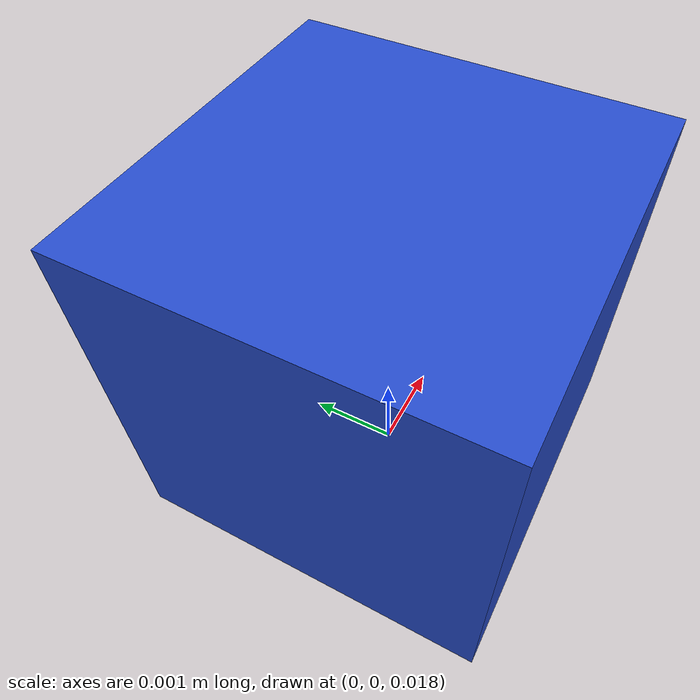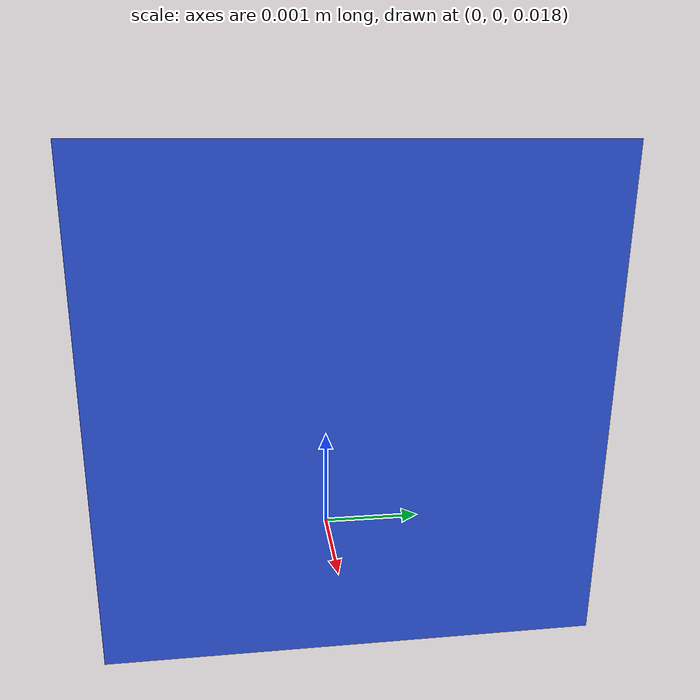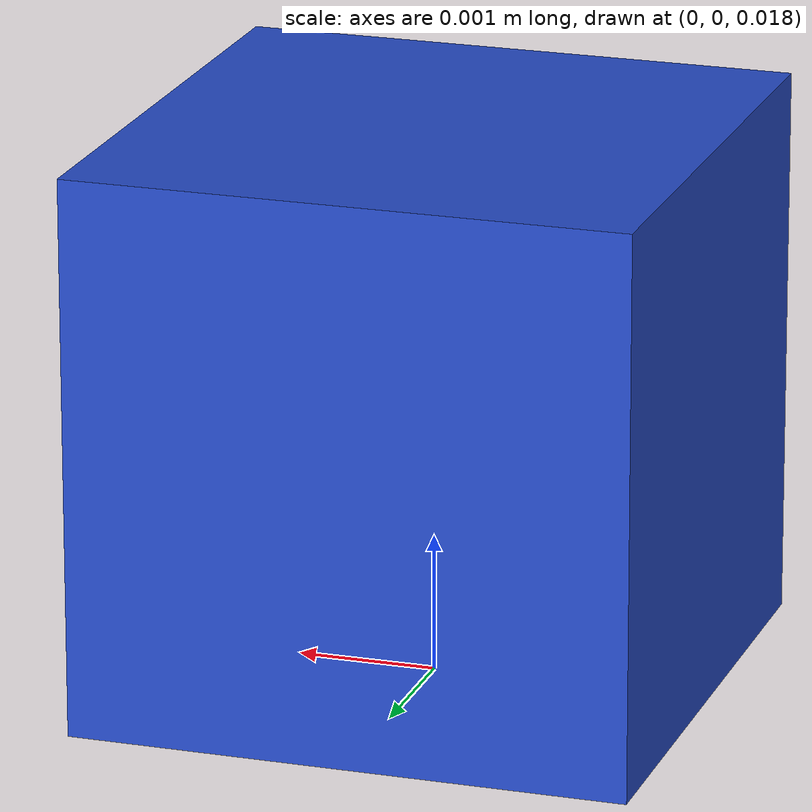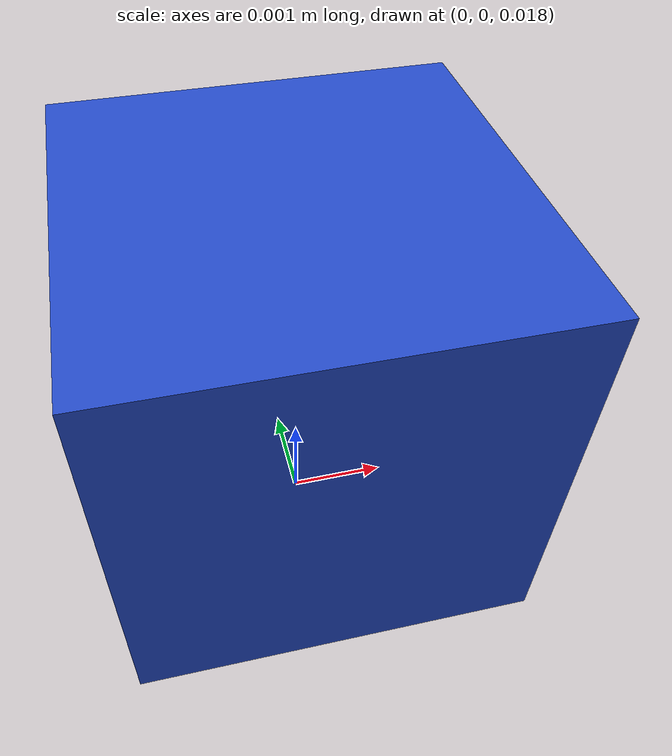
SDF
<?xml version="1.0" ?>
<sdf version="1.6">
  <model name="camera_sensor">
    <pose>0 0 0.02 0 0 0</pose>
    <link name="link">
      <inertial>
        <mass>0.1</mass>
      </inertial>

      <visual name="visual">
        <geometry>
          <box>
            <size>0.004 0.004 0.004</size>
          </box>
        </geometry>
        <material>
          <script>
            <uri>file://media/materials/scripts/gazebo.material</uri>
            <name>Gazebo/Blue</name>
          </script>
        </material>
      </visual>

      <collision name="collision">
        <pose>0 0 -0.0145 0 0 0</pose>
        <geometry>
          <box>
            <size>0.004 0.004 0.004</size>
          </box>
        </geometry>
      </collision>

      <sensor name='camera' type='camera'>
        <camera>
          <horizontal_fov>1.3962634</horizontal_fov>
          <image>
            <width>800</width>
            <height>800</height>
          </image>
          <clip>
            <near>0.02</near>
            <far>300</far>
          </clip>
        </camera>
        <always_on>1</always_on>
        <update_rate>10</update_rate>
        <visualize>1</visualize>

        <plugin name="camera_controller" filename="libCameraPlugin.so"></plugin>
      </sensor>

    </link>
  </model>
</sdf>
